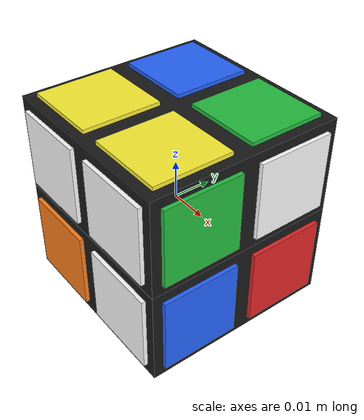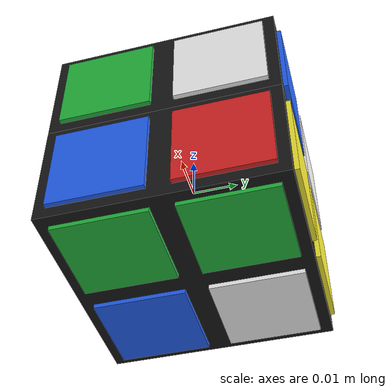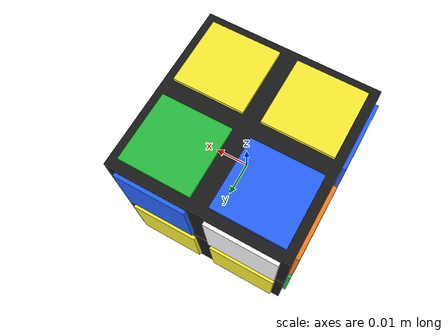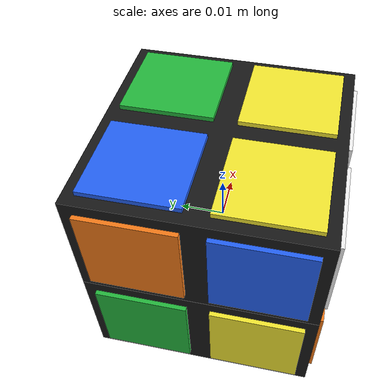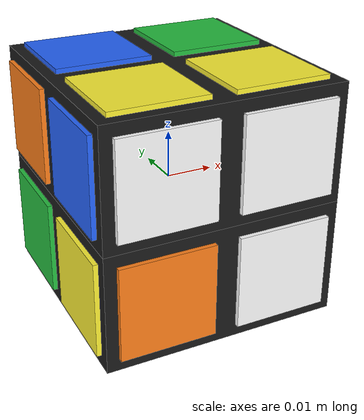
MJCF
<mujoco model="cube_2x2">

  <default>
    <default class="cube_geom">
      <geom condim="4" friction="1.2 0.05 0.001" solref="0.01 1"/>
    </default>
    <default class="cube_sticker">
      <geom contype="0" conaffinity="0" group="1"/>
    </default>
  </default>

  <worldbody>
    <body name="root">
      <freejoint name="free"/>
      <inertial pos="0 0 -0.0125" mass="0.034" diaginertia="9e-6 9e-6 1.4e-5"/>
      <geom name="bottom" class="cube_geom" type="box"
            pos="0 0 -0.0125" size="0.025 0.025 0.0125"
            rgba="0.10 0.10 0.10 1"/>

      <!-- Bottom-half stickers (do not rotate with the hinge). -->
        <geom class="cube_sticker" type="box" pos="+0.0125 +0.0125 -0.0255" size="0.0100 0.0100 0.0005" rgba="0.15 0.75 0.25 1"/>
        <geom class="cube_sticker" type="box" pos="+0.0255 +0.0125 -0.0125" size="0.0005 0.0100 0.0100" rgba="0.90 0.15 0.15 1"/>
        <geom class="cube_sticker" type="box" pos="+0.0125 +0.0255 -0.0125" size="0.0100 0.0005 0.0100" rgba="1.00 0.95 0.20 1"/>
        <geom class="cube_sticker" type="box" pos="+0.0125 -0.0125 -0.0255" size="0.0100 0.0100 0.0005" rgba="0.15 0.75 0.25 1"/>
        <geom class="cube_sticker" type="box" pos="+0.0255 -0.0125 -0.0125" size="0.0005 0.0100 0.0100" rgba="0.15 0.40 1.00 1"/>
        <geom class="cube_sticker" type="box" pos="+0.0125 -0.0255 -0.0125" size="0.0100 0.0005 0.0100" rgba="1.00 1.00 1.00 1"/>
        <geom class="cube_sticker" type="box" pos="-0.0125 +0.0125 -0.0255" size="0.0100 0.0100 0.0005" rgba="1.00 1.00 1.00 1"/>
        <geom class="cube_sticker" type="box" pos="-0.0255 +0.0125 -0.0125" size="0.0005 0.0100 0.0100" rgba="0.15 0.75 0.25 1"/>
        <geom class="cube_sticker" type="box" pos="-0.0125 +0.0255 -0.0125" size="0.0100 0.0005 0.0100" rgba="1.00 0.95 0.20 1"/>
        <geom class="cube_sticker" type="box" pos="-0.0125 -0.0125 -0.0255" size="0.0100 0.0100 0.0005" rgba="0.15 0.40 1.00 1"/>
        <geom class="cube_sticker" type="box" pos="-0.0255 -0.0125 -0.0125" size="0.0005 0.0100 0.0100" rgba="1.00 0.95 0.20 1"/>
        <geom class="cube_sticker" type="box" pos="-0.0125 -0.0255 -0.0125" size="0.0100 0.0005 0.0100" rgba="1.00 0.50 0.10 1"/>

      <body name="top">
        <joint name="face" type="hinge" axis="0 0 1"
               frictionloss="0.02" damping="0.002" limited="false"/>
        <inertial pos="0 0 0.0125" mass="0.034" diaginertia="9e-6 9e-6 1.4e-5"/>
        <geom name="top" class="cube_geom" type="box"
              pos="0 0 0.0125" size="0.025 0.025 0.0125"
              rgba="0.10 0.10 0.10 1"/>

        <!-- Top-half stickers (rotate with the face hinge). -->
        <geom class="cube_sticker" type="box" pos="+0.0125 +0.0125 +0.0255" size="0.0100 0.0100 0.0005" rgba="0.15 0.75 0.25 1"/>
        <geom class="cube_sticker" type="box" pos="+0.0255 +0.0125 +0.0125" size="0.0005 0.0100 0.0100" rgba="1.00 1.00 1.00 1"/>
        <geom class="cube_sticker" type="box" pos="+0.0125 +0.0255 +0.0125" size="0.0100 0.0005 0.0100" rgba="0.15 0.40 1.00 1"/>
        <geom class="cube_sticker" type="box" pos="+0.0125 -0.0125 +0.0255" size="0.0100 0.0100 0.0005" rgba="1.00 0.95 0.20 1"/>
        <geom class="cube_sticker" type="box" pos="+0.0255 -0.0125 +0.0125" size="0.0005 0.0100 0.0100" rgba="0.15 0.75 0.25 1"/>
        <geom class="cube_sticker" type="box" pos="+0.0125 -0.0255 +0.0125" size="0.0100 0.0005 0.0100" rgba="1.00 1.00 1.00 1"/>
        <geom class="cube_sticker" type="box" pos="-0.0125 +0.0125 +0.0255" size="0.0100 0.0100 0.0005" rgba="0.15 0.40 1.00 1"/>
        <geom class="cube_sticker" type="box" pos="-0.0255 +0.0125 +0.0125" size="0.0005 0.0100 0.0100" rgba="1.00 0.50 0.10 1"/>
        <geom class="cube_sticker" type="box" pos="-0.0125 +0.0255 +0.0125" size="0.0100 0.0005 0.0100" rgba="1.00 1.00 1.00 1"/>
        <geom class="cube_sticker" type="box" pos="-0.0125 -0.0125 +0.0255" size="0.0100 0.0100 0.0005" rgba="1.00 0.95 0.20 1"/>
        <geom class="cube_sticker" type="box" pos="-0.0255 -0.0125 +0.0125" size="0.0005 0.0100 0.0100" rgba="0.15 0.40 1.00 1"/>
        <geom class="cube_sticker" type="box" pos="-0.0125 -0.0255 +0.0125" size="0.0100 0.0005 0.0100" rgba="1.00 1.00 1.00 1"/>
      </body>
    </body>
  </worldbody>
</mujoco>
